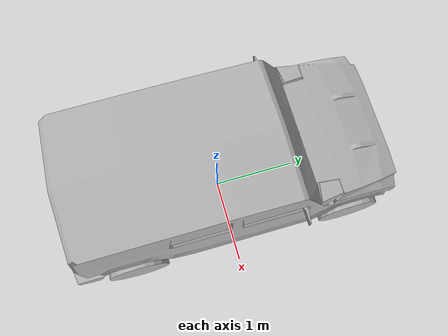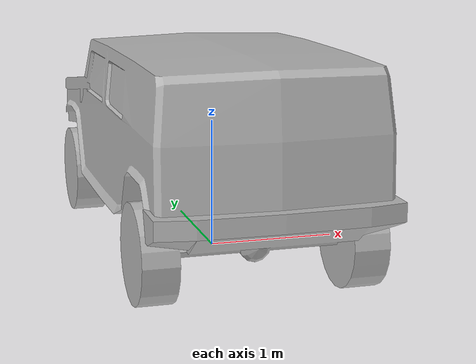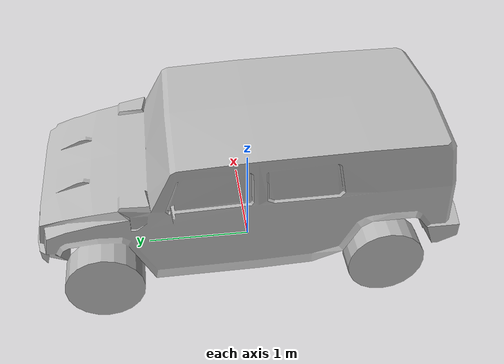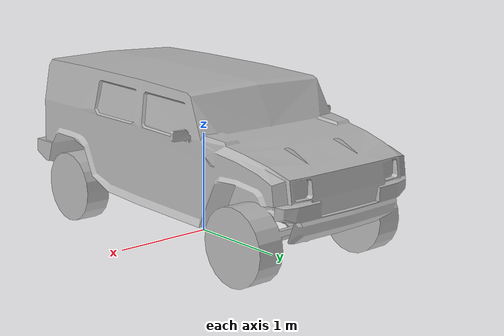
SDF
<?xml version="1.0" ?>
<sdf version="1.6">
  <model name="tactical_vehicle">
    <static>true</static>
    <link name="link">
      <collision name="collision">
        <pose>0 0 0 0 0 0</pose>
        <geometry>
          <mesh>
            <scale>0.046 0.046 0.046</scale>
            <uri>model://tactical_vehicle/meshes/tactical_vehicle.obj</uri>
          </mesh>
        </geometry>
      </collision>
      <visual name="visual">
        <pose>0 0 0 0 0 0</pose>
        <geometry>
          <mesh>
            <scale>0.046 0.046 0.046</scale>
            <uri>model://tactical_vehicle/meshes/tactical_vehicle.obj</uri>
          </mesh>
        </geometry>
      </visual>
    </link>
  </model>
</sdf>
